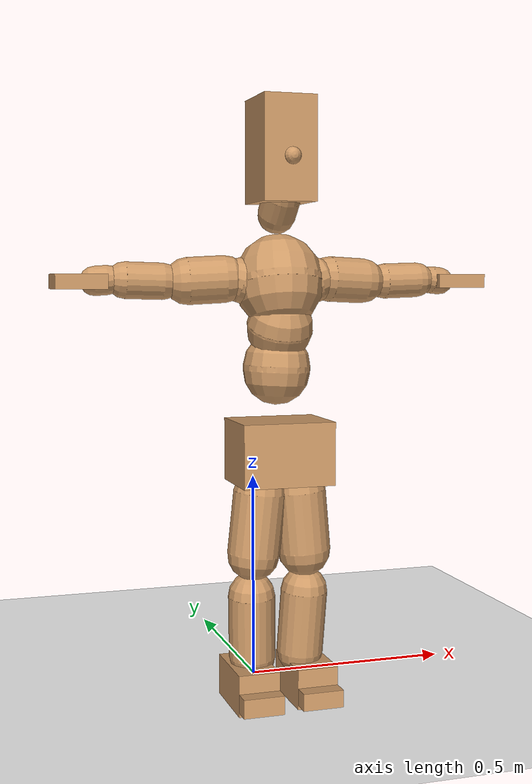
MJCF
<mujoco model="humanoid">
  <option integrator="implicitfast" />

  <visual>
    <global offwidth="1280" offheight="960" />
    <headlight active="1" ambient="0.34 0.34 0.34" diffuse="0.5 0.5 0.5" />
  </visual>

  <default>
    <joint damping="2" stiffness="2" armature="0.01" limited="true" solimplimit="0 .99 .01" />
    <geom condim="1" friction="0.7 0.005 0.0001" solimp=".99 .99 .003" solref="0.015 1" margin="0.001" rgba="0.8 0.6 .4 1" />
    <default class="smplcontact">
      <geom condim="3" friction="1. 0.005 0.0001" solref="0.015 1" solimp="0.98 0.98 0.001" priority="1" />
    </default>
    <default class="stiff_medium">
      <joint stiffness="10" />
    </default>
    <default class="stiff_medium_higher">
      <joint stiffness="50" />
    </default>
    <default class="stiff_high">
      <joint stiffness="100" />
    </default>
  </default>

  <asset>
    <texture type="skybox" builtin="gradient" rgb1="0.99 0.99 0.99" rgb2="0.608 0.828 0.892" width="100" />
    <texture builtin="flat" height="1278" mark="cross" markrgb="1 1 1" name="texgeom" random="0.01" rgb1="0.8 0.6 0.4" rgb2="0.8 0.6 0.4" type="cube" width="127" />
    <texture name="texplane" type="2d" builtin="checker" markrgb="1 1 1" rgb1="0.756 0.772 0.76" rgb2="0.6 0.6 0.6" width="100" height="100" />
    <material name="MatPlane" reflectance="0.5" texture="texplane" texrepeat="1 1" texuniform="true" />
    <material name="geom" texture="texgeom" texuniform="true" />
  </asset>

  <worldbody>
    <light name="tracking_light" pos="0 0 7" dir="0 0 -1" directional="true" cutoff="100" exponent="1" diffuse="1 1 1" specular="0.1 0.1 0.1" mode="trackcom" />
    <camera name="back" pos="0 3 2.4" xyaxes="-1 0 0 0 -1 2" mode="trackcom" />
    <camera name="side" pos="-3 0 2.4" xyaxes="0 -1 0 1 0 2" mode="trackcom" />
    <camera name="front_side" pos="-2.8 -2.8 0.8" xyaxes="0.5 -0.5 0 0.1 0.1 1" mode="trackcom" />
    <geom condim="3" name="floor" pos="0 0 0" rgba="1 1 1 1" size="100 100 .2" type="plane" material="MatPlane" />
    <body name="Pelvis" pos="-0.0018 -0.2233 0.603363" euler="90 0 0">
      <site name="Pelvis" size="0.01" />
      <freejoint name="Pelvis" />
      <geom type="box" pos="-0.0000 -0.0121 -0.0055" size="0.1069 0.0722 0.083" quat="1.0000 0.0000 0.0000 0.0000" density="3165.830099" name="Pelvis" />
      <body name="L_Hip" pos="0.0434375 -0.057125 -0.00425">
        <joint name="L_Hip_x" type="hinge" pos="0 0 0" axis="1 0 0" stiffness="4.682612346938775" range="-160.0 22.92" class="stiff_medium" damping="5.761376063259233" armature="0.003150516248715214"/>
        <joint name="L_Hip_y" type="hinge" pos="0 0 0" axis="0 1 0" stiffness="4.729285204081632" range="-70.0 70.0" class="stiff_medium" damping="5.227190951440425" armature="0.0057775169108513404"/>
        <joint name="L_Hip_z" type="hinge" pos="0 0 0" axis="0 0 1" stiffness="4.725288673469388" range="-28.65 90.0" class="stiff_medium" damping="3.8557989532863886" armature="0.003146302077085307"/>
        <geom type="capsule" density="2040.816327" fromto="0.0043125 -0.046875 -0.0005625 0.017125 -0.187625 -0.00225" size="0.0615" name="L_Hip" />
        <body name="L_Knee" pos="0.0214375 -0.2345 -0.0028125">
          <joint name="L_Knee_x" type="hinge" pos="0 0 0" axis="1 0 0" range="-5.16 171.89" damping="3.314776765383125" armature="0.00346820550097493" stiffness="0.9900423469387756"/>
          <joint name="L_Knee_y" type="hinge" pos="0 0 0" axis="0 1 0" range="-4.58 6.88" damping="4.406653617352899" armature="0.006327520325715423" stiffness="0.9590346565349543"/>
          <joint name="L_Knee_z" type="hinge" pos="0 0 0" axis="0 0 1" range="-6.88 4.58" damping="3.327252622723649" armature="0.00344560635338567" stiffness="1.0040513265306124"/>
          <geom type="capsule" density="1234.567901" fromto="-0.0016875 -0.04975 -0.0054375 -0.0068125 -0.199 -0.021875" size="0.0541" name="L_Knee" />
          <body name="L_Ankle" pos="-0.0085 -0.24875 -0.0273125">
            <joint name="L_Ankle_x" type="hinge" pos="0 0 0" axis="1 0 0" range="-45.84 45.84" class="stiff_medium" damping="3.6717736084900707" armature="0.0059919650808907534" stiffness="6.25"/>
            <joint name="L_Ankle_y" type="hinge" pos="0 0 0" axis="0 1 0" range="-74.48 22.92" class="stiff_medium" damping="1.858589102984691" armature="0.006141072806637225" stiffness="6.25"/>
            <joint name="L_Ankle_z" type="hinge" pos="0 0 0" axis="0 0 1" range="-4.58 4.58" class="stiff_medium" damping="4.001717943795505" armature="0.007117220667419966" stiffness="6.25"/>
            <geom type="box" pos="0.0145625 -0.0149375 0.015125" size="0.0483 0.0464 0.085" quat="1.0000 0.0000 0.0000 0.0000" density="449.071558" name="L_Ankle" class="smplcontact" />
            <body name="L_Toe" pos="0.0165 -0.034875 0.0745625">
              <joint name="L_Toe_x" type="hinge" pos="0 0 0" axis="1 0 0" range="-91.67 22.92" armature="0.007683229914737339" damping="1.385931989198725" stiffness="1.25"/>
              <joint name="L_Toe_y" type="hinge" pos="0 0 0" axis="0 1 0" range="-4.58 4.58" armature="0.008367648440754674" damping="1.446344395428927" stiffness="1.25"/>
              <joint name="L_Toe_z" type="hinge" pos="0 0 0" axis="0 0 1" range="-4.58 4.58" armature="0.009751505861704667" damping="1.561370060372033" stiffness="1.25"/>
              <geom type="box" pos="-0.001875 0.0034375 0.0155" size="0.0478 0.02 0.0496" quat="1.0000 0.0000 0.0000 0.0000" density="423.206892" name="L_Toe" class="smplcontact" />
            </body>
          </body>
        </body>
      </body>
      <body name="R_Hip" pos="-0.0423125 -0.0565625 -0.0026875">
        <joint name="R_Hip_x" type="hinge" pos="0 0 0" axis="1 0 0" stiffness="4.682612346938775" range="-160.0 22.92" class="stiff_medium" damping="5.761376063259233" armature="0.003150516248715214"/>
        <joint name="R_Hip_y" type="hinge" pos="0 0 0" axis="0 1 0" stiffness="4.729285204081632" range="-70.0 70.0" class="stiff_medium" damping="5.227190951440425" armature="0.0057775169108513404"/>
        <joint name="R_Hip_z" type="hinge" pos="0 0 0" axis="0 0 1" stiffness="4.725288673469388" range="-90.0 28.65" class="stiff_medium" damping="3.8557989532863886" armature="0.003146302077085307"/>
        <geom type="capsule" density="2040.816327" fromto="-0.0048125 -0.0478125 -0.001125 -0.019125 -0.191312 -0.0044375" size="0.0606" name="R_Hip" />
        <body name="R_Knee" pos="-0.0239375 -0.239125 -0.0055625">
          <joint name="R_Knee_x" type="hinge" pos="0 0 0" axis="1 0 0" range="-5.16 171.89" damping="3.314776765383125" armature="0.00346820550097493" stiffness="0.9900423469387756"/>
          <joint name="R_Knee_y" type="hinge" pos="0 0 0" axis="0 1 0" range="-6.88 4.58" damping="4.406653617352899" armature="0.006327520325715423" stiffness="0.9590346565349543"/>
          <joint name="R_Knee_z" type="hinge" pos="0 0 0" axis="0 0 1" range="-4.58 6.88" damping="3.327252622723649" armature="0.00344560635338567" stiffness="1.0040513265306124"/>
          <geom type="capsule" density="1234.567901" fromto="0.002 -0.0498125 -0.0053125 0.007875 -0.199187 -0.021125" size="0.0541" name="R_Knee" />
          <body name="R_Ankle" pos="0.009875 -0.249 -0.0264375">
            <joint name="R_Ankle_x" type="hinge" pos="0 0 0" axis="1 0 0" range="-45.84 45.84" class="stiff_medium" damping="3.6717736084900707" armature="0.0059919650808907534" stiffness="6.25"/>
            <joint name="R_Ankle_y" type="hinge" pos="0 0 0" axis="0 1 0" range="-22.92 74.48" class="stiff_medium" damping="1.858589102984691" armature="0.006141072806637225" stiffness="6.25"/>
            <joint name="R_Ankle_z" type="hinge" pos="0 0 0" axis="0 0 1" range="-4.58 4.58" class="stiff_medium" damping="4.001717943795505" armature="0.007117220667419966" stiffness="6.25"/>
            <geom type="box" pos="-0.01325 -0.010875 0.016" size="0.0483 0.0478 0.0865" quat="1.0000 0.0000 0.0000 0.0000" density="434.700981" name="R_Ankle" class="smplcontact" />
            <body name="R_Toe" pos="-0.015875 -0.0300625 0.0770625">
              <joint name="R_Toe_x" type="hinge" pos="0 0 0" axis="1 0 0" range="-91.67 22.92" armature="0.007683229914737339" damping="1.385931989198725" stiffness="1.25"/>
              <joint name="R_Toe_y" type="hinge" pos="0 0 0" axis="0 1 0" range="-4.58 4.58" armature="0.008367648440754674" damping="1.446344395428927" stiffness="1.25"/>
              <joint name="R_Toe_z" type="hinge" pos="0 0 0" axis="0 0 1" range="-4.58 4.58" armature="0.009751505861704667" damping="1.561370060372033" stiffness="1.25"/>
              <geom type="box" pos="0.002625 0.0028125 0.0141875" size="0.0479 0.0216 0.0493" quat="1.0000 0.0000 0.0000 0.0000" density="407.384095" name="R_Toe" class="smplcontact" />
            </body>
          </body>
        </body>
      </body>
      <body name="Torso" pos="-0.0025 0.109 -0.0267">
        <joint name="Torso_x" type="hinge" pos="0 0 0" axis="1 0 0" range="-25.78 57.3" class="stiff_medium" damping="12.833128643120643" armature="0.008389867755726707" stiffness="8.724237142857143"/>
        <joint name="Torso_y" type="hinge" pos="0 0 0" axis="0 1 0" range="-57.3 57.3" class="stiff_high" damping="9.641007877053584" armature="0.002615251180296176" stiffness="88.85287346938776"/>
        <joint name="Torso_z" type="hinge" pos="0 0 0" axis="0 0 1" range="-34.38 34.38" class="stiff_high" damping="15.256621848072815" armature="0.006404603814601965" stiffness="90.85827826086955"/>
        <geom type="capsule" density="2040.816327" fromto="0.0025 0.0608 0.0005 0.003 0.0743 0.0006" size="0.0769" name="Torso" />
        <body name="Spine" pos="0.0055 0.1352 0.0011">
          <joint name="Spine_x" type="hinge" pos="0 0 0" axis="1 0 0" stiffness="8.524132708333333" range="-25.78 57.3" class="stiff_medium" damping="12.593328186154578" armature="0.008268911088118523"/>
          <joint name="Spine_y" type="hinge" pos="0 0 0" axis="0 1 0" stiffness="8.372724772727274" range="-57.3 57.3" class="stiff_high" damping="3.7058359647278705" armature="0.002562864197858745"/>
          <joint name="Spine_z" type="hinge" pos="0 0 0" axis="0 0 1" stiffness="17.091765581395343" range="-34.38 34.38" class="stiff_high" damping="7.912330782724081" armature="0.005087324565503505"/>
          <geom type="capsule" density="2040.816327" fromto="0.0007 0.0238 0.0114 0.0008 0.0291 0.014" size="0.0755" name="Spine" />
          <body name="Chest" pos="0.0015 0.0529 0.0254">
            <joint name="Chest_x" type="hinge" pos="0 0 0" axis="1 0 0" stiffness="8.200278372093024" range="-25.78 57.3" class="stiff_medium" damping="12.319816615498857" armature="0.008226164178146724"/>
            <joint name="Chest_y" type="hinge" pos="0 0 0" axis="0 1 0" stiffness="6.66116392857143" range="-57.3 57.3" class="stiff_high" damping="3.2862373670032503" armature="0.0025331899922285133"/>
            <joint name="Chest_z" type="hinge" pos="0 0 0" axis="0 0 1" stiffness="16.64932651162791" range="-34.38 34.38" class="stiff_high" damping="7.360514262532789" armature="0.004519466278837099"/>
            <geom type="capsule" density="2040.816327" fromto="-0.0009 0.0682 -0.0173 -0.001 0.0833 -0.0212" size="0.1002" name="Chest" />
            <body name="Neck" pos="-0.0028 0.2139 -0.0429">
              <joint name="Neck_x" type="hinge" pos="0 0 0" axis="1 0 0" range="-28.65 57.3" class="stiff_medium_higher" damping="10.0" armature="0.01" stiffness="50.0"/>
              <joint name="Neck_y" type="hinge" pos="0 0 0" axis="0 1 0" range="-40.11 40.11" class="stiff_medium_higher" damping="10.0" armature="0.01" stiffness="50.0"/>
              <joint name="Neck_z" type="hinge" pos="0 0 0" axis="0 0 1" range="-40.11 40.11" class="stiff_medium_higher" damping="9.999999999999991" armature="0.009999999999999983" stiffness="50.0"/>
              <geom type="capsule" density="1000" fromto="0.001 0.013 0.0103 0.0041 0.052 0.0411" size="0.0436" name="Neck" />
              <body name="Head" pos="0.0052 0.065 0.0513">
                <joint name="Head_x" type="hinge" pos="0 0 0" axis="1 0 0" range="-28.65 57.3" class="stiff_medium_higher" damping="2.0000000000000013" armature="0.010000000000000014" stiffness="50.0"/>
                <joint name="Head_y" type="hinge" pos="0 0 0" axis="0 1 0" range="-40.11 40.11" class="stiff_medium_higher" damping="2.0" armature="0.01" stiffness="50.0"/>
                <joint name="Head_z" type="hinge" pos="0 0 0" axis="0 0 1" range="-40.11 40.11" class="stiff_medium_higher" damping="1.9999999999999993" armature="0.009999999999999993" stiffness="50.0"/>
                <geom type="box" pos="-0.0042 0.0876 -0.0116" size="0.0606 0.1154 0.076" quat="1.0000 0.0000 0.0000 0.0000" density="1018.069894" name="Head" />
                <geom type="capsule" name="nose" size="0.02 0.01" pos="0 0.07 0.05" quat="1 0 0 0" mass="0" contype="0" conaffinity="0" />
              </body>
            </body>
            <body name="L_Thorax" pos="0.04334 0.066935 -0.018755">
              <joint name="L_Thorax_x" type="hinge" pos="0 0 0" axis="1 0 0" range="-10.89 4.58" class="stiff_medium_higher" damping="8.434703621562795" armature="0.004456108006307129" stiffness="19.956940306122444"/>
              <joint name="L_Thorax_y" type="hinge" pos="0 0 0" axis="0 1 0" range="-28.65 17.19" class="stiff_medium_higher" damping="6.022763730189365" armature="0.002308462047497596" stiffness="19.641693367346935"/>
              <joint name="L_Thorax_z" type="hinge" pos="0 0 0" axis="0 0 1" range="-31.51 40.11" class="stiff_medium_higher" damping="6.0206596523268665" armature="0.00230644025454951" stiffness="19.64517755102041"/>
              <geom type="capsule" density="1000" fromto="0.01001 0.003355 -0.00099 0.04004 0.01342 -0.003905" size="0.0521" name="L_Thorax" />
              <body name="L_Shoulder" pos="0.05005 0.016775 -0.004895">
                <joint name="L_Shoulder_x" type="hinge" pos="0 0 0" axis="1 0 0" range="-97.4 97.4" class="stiff_medium" damping="2.7507326192703623" armature="0.005207580254125646" stiffness="4.036066215805471"/>
                <joint name="L_Shoulder_y" type="hinge" pos="0 0 0" axis="0 1 0" range="-108.86 80.21" class="stiff_medium" damping="1.8298767221096353" armature="0.0023536822566645405" stiffness="3.9517852040816326"/>
                <joint name="L_Shoulder_z" type="hinge" pos="0 0 0" axis="0 0 1" range="-97.4 85.94" class="stiff_medium" damping="1.8299095357342465" armature="0.0023507489222583905" stiffness="3.9568582653061224"/>
                <geom type="capsule" density="1000" fromto="0.028545 -0.00143 -0.003025 0.114235 -0.00561 -0.0121" size="0.0517" name="L_Shoulder" />
                <body name="L_Elbow" pos="0.14278 -0.00704 -0.015125">
                  <joint name="L_Elbow_x" type="hinge" pos="0 0 0" axis="1 0 0" range="-17.19 4.58" damping="2.63838098611619" armature="0.0066028902176267406" stiffness="0.8433948163265306"/>
                  <joint name="L_Elbow_y" type="hinge" pos="0 0 0" axis="0 1 0" range="-180.0 17.19" damping="1.649331180076202" armature="0.002582836246104814" stiffness="0.842575551020408"/>
                  <joint name="L_Elbow_z" type="hinge" pos="0 0 0" axis="0 0 1" range="-100.84 4.58" damping="1.6457692537144095" armature="0.0025674453810837074" stiffness="0.8439693265306122"/>
                  <geom type="capsule" density="1000" fromto="0.02739 0.00099 -0.00011 0.10967 0.00396 -0.000495" size="0.0405" name="L_Elbow" />
                  <body name="L_Wrist" pos="0.13706 0.00495 -0.00066">
                    <joint name="L_Wrist_x" type="hinge" pos="0 0 0" axis="1 0 0" range="-180.0 22.92" armature="0.007461834395238876" damping="1.2279494204587482" stiffness="1.0103814285714288"/>
                    <joint name="L_Wrist_y" type="hinge" pos="0 0 0" axis="0 1 0" range="-17.19 17.19" armature="0.0036649156166127473" damping="0.8549575346764099" stiffness="0.9972294897959184"/>
                    <joint name="L_Wrist_z" type="hinge" pos="0 0 0" axis="0 0 1" range="-22.92 22.92" armature="0.003441422269276138" damping="0.8306797080467413" stiffness="1.002534306122449"/>
                    <geom type="capsule" density="1000" fromto="0.00924 -0.00088 -0.00165 0.03696 -0.003575 -0.0066" size="0.0318" name="L_Wrist" class="smplcontact" />
                    <body name="L_Hand" pos="0.0462 -0.00451 -0.008195">
                      <joint name="L_Hand_x" type="hinge" pos="0 0 0" axis="1 0 0" range="-17.19 17.19" armature="0.009696126030368893" damping="1.460529947204492" stiffness="1.0999999999999999"/>
                      <joint name="L_Hand_y" type="hinge" pos="0 0 0" axis="0 1 0" range="-51.57 51.57" armature="0.006325063576496717" damping="1.179624510947987" stiffness="1.0999999999999999"/>
                      <joint name="L_Hand_z" type="hinge" pos="0 0 0" axis="0 0 1" range="-91.67 91.67" armature="0.0054264608203165275" damping="1.0926213344382563" stiffness="1.0999999999999999"/>
                      <geom type="box" pos="0.027115 0.00055 -0.00319" size="0.0585 0.0158 0.0538" quat="1.0000 0.0000 0.0000 0.0000" density="400.552564" name="L_Hand" class="smplcontact" />
                    </body>
                  </body>
                </body>
              </body>
            </body>
            <body name="R_Thorax" pos="-0.04499 0.06534 -0.02123">
              <joint name="R_Thorax_x" type="hinge" pos="0 0 0" axis="1 0 0" range="-10.89 4.58" class="stiff_medium_higher" damping="8.434703621562795" armature="0.004456108006307129" stiffness="19.956940306122444"/>
              <joint name="R_Thorax_y" type="hinge" pos="0 0 0" axis="0 1 0" range="-17.19 28.65" class="stiff_medium_higher" damping="6.022763730189365" armature="0.002308462047497596" stiffness="19.641693367346935"/>
              <joint name="R_Thorax_z" type="hinge" pos="0 0 0" axis="0 0 1" range="-40.11 31.51" class="stiff_medium_higher" damping="6.0206596523268665" armature="0.00230644025454951" stiffness="19.64517755102041"/>
              <geom type="capsule" density="1000" fromto="-0.01056 0.003575 -0.00099 -0.04224 0.0143 -0.004015" size="0.0511" name="R_Thorax" />
              <body name="R_Shoulder" pos="-0.0528 0.01793 -0.005005">
                <joint name="R_Shoulder_x" type="hinge" pos="0 0 0" axis="1 0 0" range="-97.4 97.4" class="stiff_medium" damping="2.7507326192703623" armature="0.005207580254125646" stiffness="4.036066215805471"/>
                <joint name="R_Shoulder_y" type="hinge" pos="0 0 0" axis="0 1 0" range="-80.21 108.86" class="stiff_medium" damping="1.8298767221096353" armature="0.0023536822566645405" stiffness="3.9517852040816326"/>
                <joint name="R_Shoulder_z" type="hinge" pos="0 0 0" axis="0 0 1" range="-85.94 97.4" class="stiff_medium" damping="1.8299095357342465" armature="0.0023507489222583905" stiffness="3.9568582653061224"/>
                <geom type="capsule" density="1000" fromto="-0.027885 -0.001485 -0.002365 -0.11165 -0.005885 -0.009405" size="0.0531" name="R_Shoulder" />
                <body name="R_Elbow" pos="-0.139535 -0.007315 -0.01177">
                  <joint name="R_Elbow_x" type="hinge" pos="0 0 0" axis="1 0 0" range="-17.19 4.58" damping="2.63838098611619" armature="0.0066028902176267406" stiffness="0.8433948163265306"/>
                  <joint name="R_Elbow_y" type="hinge" pos="0 0 0" axis="0 1 0" range="-17.19 180.0" damping="1.649331180076202" armature="0.002582836246104814" stiffness="0.842575551020408"/>
                  <joint name="R_Elbow_z" type="hinge" pos="0 0 0" axis="0 0 1" range="-4.58 100.84" damping="1.6457692537144095" armature="0.0025674453810837074" stiffness="0.8439693265306122"/>
                  <geom type="capsule" density="1000" fromto="-0.028105 0.00088 -0.000605 -0.11231 0.00341 -0.00242" size="0.0408" name="R_Elbow" />
                  <body name="R_Wrist" pos="-0.140415 0.00429 -0.00308">
                    <joint name="R_Wrist_x" type="hinge" pos="0 0 0" axis="1 0 0" range="-180.0 22.92" armature="0.007461834395238876" damping="1.2279494204587482" stiffness="1.0103814285714288"/>
                    <joint name="R_Wrist_y" type="hinge" pos="0 0 0" axis="0 1 0" range="-17.19 17.19" armature="0.0036649156166127473" damping="0.8549575346764099" stiffness="0.9972294897959184"/>
                    <joint name="R_Wrist_z" type="hinge" pos="0 0 0" axis="0 0 1" range="-22.92 22.92" armature="0.003441422269276138" damping="0.8306797080467413" stiffness="1.002534306122449"/>
                    <geom type="capsule" density="1000" fromto="-0.009295 -0.00066 -0.001155 -0.037235 -0.002695 -0.004565" size="0.0326" name="R_Wrist" class="smplcontact" />
                    <body name="R_Hand" pos="-0.04653 -0.003355 -0.005665">
                      <joint name="R_Hand_x" type="hinge" pos="0 0 0" axis="1 0 0" range="-17.19 17.19" armature="0.009696126030368893" damping="1.460529947204492" stiffness="1.0999999999999999"/>
                      <joint name="R_Hand_y" type="hinge" pos="0 0 0" axis="0 1 0" range="-51.57 51.57" armature="0.006325063576496717" damping="1.179624510947987" stiffness="1.0999999999999999"/>
                      <joint name="R_Hand_z" type="hinge" pos="0 0 0" axis="0 0 1" range="-91.67 91.67" armature="0.0054264608203165275" damping="1.0926213344382563" stiffness="1.0999999999999999"/>
                      <geom type="box" pos="-0.02541 -0.000495 -0.004345" size="0.0569 0.0164 0.0546" quat="1.0000 0.0000 0.0000 0.0000" density="403.679611" name="R_Hand" class="smplcontact" />
                    </body>
                  </body>
                </body>
              </body>
            </body>
          </body>
        </body>
      </body>
    </body>
  </worldbody>
  <actuator>
    <general name="L_Hip_x" joint="L_Hip_x" biastype="affine" gainprm="134.5455305788832" biasprm="-100.82823820114426 -84.28702224489795 -0.7681834751012311" ctrllimited="true" ctrlrange="-1 1" forcerange="-168.5740444897959 168.5740444897959" />
    <general name="L_Hip_y" joint="L_Hip_y" biastype="affine" gainprm="104.00241357711633" biasprm="0.0 -85.12713367346939 -1.0454381902880852" ctrllimited="true" ctrlrange="-1 1" forcerange="-170.25426734693878 170.25426734693878" />
    <general name="L_Hip_z" joint="L_Hip_z" biastype="affine" gainprm="88.0675601736452" biasprm="45.53682947031718 -85.05519612244898 -0.7711597906572777" ctrllimited="true" ctrlrange="-1 1" forcerange="-170.11039224489795 170.11039224489795" />
    <general name="L_Knee_x" joint="L_Knee_x" biastype="affine" gainprm="137.6700859239888" biasprm="129.64548673316378 -89.1038112244898 -0.8286941913457813" ctrllimited="true" ctrlrange="-1 1" forcerange="-178.2076224489796 178.2076224489796" />
    <general name="L_Knee_y" joint="L_Knee_y" biastype="affine" gainprm="8.63194770327106" biasprm="1.7324153331172283 -86.3131190881459 -1.1016634043382247" ctrllimited="true" ctrlrange="-1 1" forcerange="-172.6262381762918 172.6262381762918" />
    <general name="L_Knee_z" joint="L_Knee_z" biastype="affine" gainprm="9.03712757714746" biasprm="-1.8137341559720035 -90.36461938775511 -0.8318131556809123" ctrllimited="true" ctrlrange="-1 1" forcerange="-180.72923877551023 180.72923877551023" />
    <general name="L_Ankle_x" joint="L_Ankle_x" biastype="affine" gainprm="45.003314762673796" biasprm="0.0 -56.25 -1.2239245361633568" ctrllimited="true" ctrlrange="-1 1" forcerange="-112.5 112.5" />
    <general name="L_Ankle_y" joint="L_Ankle_y" biastype="affine" gainprm="47.811113196819676" biasprm="-25.309455815482774 -56.25 -1.239059401989794" ctrllimited="true" ctrlrange="-1 1" forcerange="-112.5 112.5" />
    <general name="L_Ankle_z" joint="L_Ankle_z" biastype="affine" gainprm="4.496404485450391" biasprm="0.0 -56.25 -1.3339059812651684" ctrllimited="true" ctrlrange="-1 1" forcerange="-112.5 112.5" />
    <general name="L_Toe_x" joint="L_Toe_x" biastype="affine" gainprm="44.999387771856796" biasprm="-26.998061866787282 -45.0 -0.55437279567949" ctrllimited="true" ctrlrange="-1 1" forcerange="-90.0 90.0" />
    <general name="L_Toe_y" joint="L_Toe_y" biastype="affine" gainprm="3.597123588360313" biasprm="0.0 -45.0 -0.5785377581715708" ctrllimited="true" ctrlrange="-1 1" forcerange="-90.0 90.0" />
    <general name="L_Toe_z" joint="L_Toe_z" biastype="affine" gainprm="3.597123588360313" biasprm="0.0 -45.0 -0.6245480241488133" ctrllimited="true" ctrlrange="-1 1" forcerange="-90.0 90.0" />
    <general name="R_Hip_x" joint="R_Hip_x" biastype="affine" gainprm="134.5455305788832" biasprm="-100.82823820114426 -84.28702224489795 -0.7681834751012311" ctrllimited="true" ctrlrange="-1 1" forcerange="-168.5740444897959 168.5740444897959" />
    <general name="R_Hip_y" joint="R_Hip_y" biastype="affine" gainprm="104.00241357711633" biasprm="0.0 -85.12713367346939 -1.0454381902880852" ctrllimited="true" ctrlrange="-1 1" forcerange="-170.25426734693878 170.25426734693878" />
    <general name="R_Hip_z" joint="R_Hip_z" biastype="affine" gainprm="88.0675601736452" biasprm="-45.53682947031718 -85.05519612244898 -0.7711597906572777" ctrllimited="true" ctrlrange="-1 1" forcerange="-170.11039224489795 170.11039224489795" />
    <general name="R_Knee_x" joint="R_Knee_x" biastype="affine" gainprm="137.6700859239888" biasprm="129.64548673316378 -89.1038112244898 -0.8286941913457813" ctrllimited="true" ctrlrange="-1 1" forcerange="-178.2076224489796 178.2076224489796" />
    <general name="R_Knee_y" joint="R_Knee_y" biastype="affine" gainprm="8.63194770327106" biasprm="-1.7324153331172283 -86.3131190881459 -1.1016634043382247" ctrllimited="true" ctrlrange="-1 1" forcerange="-172.6262381762918 172.6262381762918" />
    <general name="R_Knee_z" joint="R_Knee_z" biastype="affine" gainprm="9.03712757714746" biasprm="1.8137341559720035 -90.36461938775511 -0.8318131556809123" ctrllimited="true" ctrlrange="-1 1" forcerange="-180.72923877551023 180.72923877551023" />
    <general name="R_Ankle_x" joint="R_Ankle_x" biastype="affine" gainprm="45.003314762673796" biasprm="0.0 -56.25 -1.2239245361633568" ctrllimited="true" ctrlrange="-1 1" forcerange="-112.5 112.5" />
    <general name="R_Ankle_y" joint="R_Ankle_y" biastype="affine" gainprm="47.811113196819676" biasprm="25.309455815482774 -56.25 -1.239059401989794" ctrllimited="true" ctrlrange="-1 1" forcerange="-112.5 112.5" />
    <general name="R_Ankle_z" joint="R_Ankle_z" biastype="affine" gainprm="4.496404485450391" biasprm="0.0 -56.25 -1.3339059812651684" ctrllimited="true" ctrlrange="-1 1" forcerange="-112.5 112.5" />
    <general name="R_Toe_x" joint="R_Toe_x" biastype="affine" gainprm="44.999387771856796" biasprm="-26.998061866787282 -45.0 -0.55437279567949" ctrllimited="true" ctrlrange="-1 1" forcerange="-90.0 90.0" />
    <general name="R_Toe_y" joint="R_Toe_y" biastype="affine" gainprm="3.597123588360313" biasprm="0.0 -45.0 -0.5785377581715708" ctrllimited="true" ctrlrange="-1 1" forcerange="-90.0 90.0" />
    <general name="R_Toe_z" joint="R_Toe_z" biastype="affine" gainprm="3.597123588360313" biasprm="0.0 -45.0 -0.6245480241488133" ctrllimited="true" ctrlrange="-1 1" forcerange="-90.0 90.0" />
    <general name="Torso_x" joint="Torso_x" biastype="affine" gainprm="151.80377221252243" biasprm="57.593342563056154 -209.38169142857143 -3.422167638165505" ctrllimited="true" ctrlrange="-1 1" forcerange="-314.07253714285713 314.07253714285713" />
    <general name="Torso_y" joint="Torso_y" biastype="affine" gainprm="213.26260438991383" biasprm="0.0 -213.24689632653062 -1.9282015754107167" ctrllimited="true" ctrlrange="-1 1" forcerange="-319.8703444897959 319.8703444897959" />
    <general name="Torso_z" joint="Torso_z" biastype="affine" gainprm="130.84555825179245" biasprm="0.0 -218.05986782608693 -3.051324369614563" ctrllimited="true" ctrlrange="-1 1" forcerange="-327.0898017391304 327.0898017391304" />
    <general name="Spine_x" joint="Spine_x" biastype="affine" gainprm="148.32190812518058" biasprm="56.272346462514335 -204.579185 -3.3582208496412207" ctrllimited="true" ctrlrange="-1 1" forcerange="-306.86877749999996 306.86877749999996" />
    <general name="Spine_y" joint="Spine_y" biastype="affine" gainprm="200.96019646308363" biasprm="0.0 -200.94539454545458 -1.8529179823639352" ctrllimited="true" ctrlrange="-1 1" forcerange="-301.41809181818184 301.41809181818184" />
    <general name="Spine_z" joint="Spine_z" biastype="affine" gainprm="123.06977700949903" biasprm="0.0 -205.10118697674412 -2.6374435942413603" ctrllimited="true" ctrlrange="-1 1" forcerange="-307.6517804651162 307.6517804651162" />
    <general name="Chest_x" joint="Chest_x" biastype="affine" gainprm="142.68676672729774" biasprm="54.13441125715483 -196.80668093023257 -3.285284430799695" ctrllimited="true" ctrlrange="-1 1" forcerange="-295.21002139534886 295.21002139534886" />
    <general name="Chest_y" joint="Chest_y" biastype="affine" gainprm="159.87971038041" biasprm="0.0 -159.8679342857143 -1.6431186835016252" ctrllimited="true" ctrlrange="-1 1" forcerange="-239.80190142857145 239.80190142857145" />
    <general name="Chest_z" joint="Chest_z" biastype="affine" gainprm="119.88398105429127" biasprm="0.0 -199.7919181395349 -2.453504754177596" ctrllimited="true" ctrlrange="-1 1" forcerange="-299.68787720930237 299.68787720930237" />
    <general name="Neck_x" joint="Neck_x" biastype="affine" gainprm="27.00198885760427" biasprm="9.000662952534757 -36.0 -0.8" ctrllimited="true" ctrlrange="-1 1" forcerange="-72.0 72.0" />
    <general name="Neck_y" joint="Neck_y" biastype="affine" gainprm="25.20185626709732" biasprm="0.0 -36.0 -0.8" ctrllimited="true" ctrlrange="-1 1" forcerange="-72.0 72.0" />
    <general name="Neck_z" joint="Neck_z" biastype="affine" gainprm="25.20185626709732" biasprm="0.0 -36.0 -0.7999999999999994" ctrllimited="true" ctrlrange="-1 1" forcerange="-72.0 72.0" />
    <general name="Head_x" joint="Head_x" biastype="affine" gainprm="18.001325905069514" biasprm="6.000441968356505 -24.0 -0.8000000000000006" ctrllimited="true" ctrlrange="-1 1" forcerange="-48.0 48.0" />
    <general name="Head_y" joint="Head_y" biastype="affine" gainprm="16.801237511398213" biasprm="0.0 -24.0 -0.8" ctrllimited="true" ctrlrange="-1 1" forcerange="-48.0 48.0" />
    <general name="Head_z" joint="Head_z" biastype="affine" gainprm="16.801237511398213" biasprm="0.0 -24.0 -0.7999999999999998" ctrllimited="true" ctrlrange="-1 1" forcerange="-48.0 48.0" />
    <general name="L_Thorax_x" joint="L_Thorax_x" biastype="affine" gainprm="6.466106980153143" biasprm="-2.6374360080650514 -47.89665673469387 -0.6747762897250236" ctrllimited="true" ctrlrange="-1 1" forcerange="-95.79331346938774 95.79331346938774" />
    <general name="L_Thorax_y" joint="L_Thorax_y" biastype="affine" gainprm="18.857414593762904" biasprm="-4.714353648440726 -47.140064081632644 -0.48182109841514925" ctrllimited="true" ctrlrange="-1 1" forcerange="-94.28012816326529 94.28012816326529" />
    <general name="L_Thorax_z" joint="L_Thorax_z" biastype="affine" gainprm="29.46787972505706" biasprm="3.538449673771163 -47.14842612244898 -0.4816527721861493" ctrllimited="true" ctrlrange="-1 1" forcerange="-94.29685224489796 94.29685224489796" />
    <general name="L_Shoulder_x" joint="L_Shoulder_x" biastype="affine" gainprm="32.93334506047744" biasprm="0.0 -19.373117835866264 -0.7335286984720967" ctrllimited="true" ctrlrange="-1 1" forcerange="-38.74623567173253 38.74623567173253" />
    <general name="L_Shoulder_y" joint="L_Shoulder_y" biastype="affine" gainprm="31.297133640991394" biasprm="-4.74249155770034 -18.968568979591836 -0.4879671258959028" ctrllimited="true" ctrlrange="-1 1" forcerange="-37.93713795918367 37.93713795918367" />
    <general name="L_Shoulder_z" joint="L_Shoulder_z" biastype="affine" gainprm="30.387595059587213" biasprm="-1.8994318718384982 -18.992919673469387 -0.4879758761957991" ctrllimited="true" ctrlrange="-1 1" forcerange="-37.985839346938775 37.985839346938775" />
    <general name="L_Elbow_x" joint="L_Elbow_x" biastype="affine" gainprm="5.768185641845626" biasprm="-3.3411493313584466 -30.3622133877551 -0.4221409577785904" ctrllimited="true" ctrlrange="-1 1" forcerange="-60.7244267755102 60.7244267755102" />
    <general name="L_Elbow_y" joint="L_Elbow_y" biastype="affine" gainprm="52.19676802931011" biasprm="-43.09628177317298 -30.33271983673469 -0.2638929888121923" ctrllimited="true" ctrlrange="-1 1" forcerange="-60.66543967346938 60.66543967346938" />
    <general name="L_Elbow_z" joint="L_Elbow_z" biastype="affine" gainprm="27.951141407994328" biasprm="-25.522451830141666 -30.382895755102037 -0.26332308059430554" ctrllimited="true" ctrlrange="-1 1" forcerange="-60.765791510204075 60.765791510204075" />
    <general name="L_Wrist_x" joint="L_Wrist_x" biastype="affine" gainprm="10.735167645580283" biasprm="-8.310073594361082 -6.062288571428573 -0.4911797681834993" ctrllimited="true" ctrlrange="-1 1" forcerange="-12.124577142857145 12.124577142857145" />
    <general name="L_Wrist_y" joint="L_Wrist_y" biastype="affine" gainprm="1.7951453047962525" biasprm="0.0 -5.9833769387755105 -0.34198301387056396" ctrllimited="true" ctrlrange="-1 1" forcerange="-11.966753877551021 11.966753877551021" />
    <general name="L_Wrist_z" joint="L_Wrist_z" biastype="affine" gainprm="2.4062595700697247" biasprm="0.0 -6.015205836734694 -0.33227188321869655" ctrllimited="true" ctrlrange="-1 1" forcerange="-12.030411673469388 12.030411673469388" />
    <general name="L_Hand_x" joint="L_Hand_x" biastype="affine" gainprm="1.9801458495576467" biasprm="0.0 -6.6 -0.5842119788817968" ctrllimited="true" ctrlrange="-1 1" forcerange="-13.2 13.2" />
    <general name="L_Hand_y" joint="L_Hand_y" biastype="affine" gainprm="5.940437548672939" biasprm="0.0 -6.6 -0.4718498043791948" ctrllimited="true" ctrlrange="-1 1" forcerange="-13.2 13.2" />
    <general name="L_Hand_z" joint="L_Hand_z" biastype="affine" gainprm="10.55962594700113" biasprm="0.0 -6.6 -0.4370485337753025" ctrllimited="true" ctrlrange="-1 1" forcerange="-13.2 13.2" />
    <general name="R_Thorax_x" joint="R_Thorax_x" biastype="affine" gainprm="6.466106980153143" biasprm="-2.6374360080650514 -47.89665673469387 -0.6747762897250236" ctrllimited="true" ctrlrange="-1 1" forcerange="-95.79331346938774 95.79331346938774" />
    <general name="R_Thorax_y" joint="R_Thorax_y" biastype="affine" gainprm="18.857414593762904" biasprm="4.714353648440723 -47.140064081632644 -0.48182109841514925" ctrllimited="true" ctrlrange="-1 1" forcerange="-94.28012816326529 94.28012816326529" />
    <general name="R_Thorax_z" joint="R_Thorax_z" biastype="affine" gainprm="29.46787972505706" biasprm="-3.538449673771163 -47.14842612244898 -0.4816527721861493" ctrllimited="true" ctrlrange="-1 1" forcerange="-94.29685224489796 94.29685224489796" />
    <general name="R_Shoulder_x" joint="R_Shoulder_x" biastype="affine" gainprm="32.93334506047744" biasprm="0.0 -19.373117835866264 -0.7335286984720967" ctrllimited="true" ctrlrange="-1 1" forcerange="-38.74623567173253 38.74623567173253" />
    <general name="R_Shoulder_y" joint="R_Shoulder_y" biastype="affine" gainprm="31.297133640991394" biasprm="4.74249155770034 -18.968568979591836 -0.4879671258959028" ctrllimited="true" ctrlrange="-1 1" forcerange="-37.93713795918367 37.93713795918367" />
    <general name="R_Shoulder_z" joint="R_Shoulder_z" biastype="affine" gainprm="30.387595059587213" biasprm="1.899431871838494 -18.992919673469387 -0.4879758761957991" ctrllimited="true" ctrlrange="-1 1" forcerange="-37.985839346938775 37.985839346938775" />
    <general name="R_Elbow_x" joint="R_Elbow_x" biastype="affine" gainprm="5.768185641845626" biasprm="-3.3411493313584466 -30.3622133877551 -0.4221409577785904" ctrllimited="true" ctrlrange="-1 1" forcerange="-60.7244267755102 60.7244267755102" />
    <general name="R_Elbow_y" joint="R_Elbow_y" biastype="affine" gainprm="52.19676802931011" biasprm="43.09628177317298 -30.33271983673469 -0.2638929888121923" ctrllimited="true" ctrlrange="-1 1" forcerange="-60.66543967346938 60.66543967346938" />
    <general name="R_Elbow_z" joint="R_Elbow_z" biastype="affine" gainprm="27.951141407994328" biasprm="25.522451830141662 -30.382895755102037 -0.26332308059430554" ctrllimited="true" ctrlrange="-1 1" forcerange="-60.765791510204075 60.765791510204075" />
    <general name="R_Wrist_x" joint="R_Wrist_x" biastype="affine" gainprm="10.735167645580283" biasprm="-8.310073594361082 -6.062288571428573 -0.4911797681834993" ctrllimited="true" ctrlrange="-1 1" forcerange="-12.124577142857145 12.124577142857145" />
    <general name="R_Wrist_y" joint="R_Wrist_y" biastype="affine" gainprm="1.7951453047962525" biasprm="0.0 -5.9833769387755105 -0.34198301387056396" ctrllimited="true" ctrlrange="-1 1" forcerange="-11.966753877551021 11.966753877551021" />
    <general name="R_Wrist_z" joint="R_Wrist_z" biastype="affine" gainprm="2.4062595700697247" biasprm="0.0 -6.015205836734694 -0.33227188321869655" ctrllimited="true" ctrlrange="-1 1" forcerange="-12.030411673469388 12.030411673469388" />
    <general name="R_Hand_x" joint="R_Hand_x" biastype="affine" gainprm="1.9801458495576467" biasprm="0.0 -6.6 -0.5842119788817968" ctrllimited="true" ctrlrange="-1 1" forcerange="-13.2 13.2" />
    <general name="R_Hand_y" joint="R_Hand_y" biastype="affine" gainprm="5.940437548672939" biasprm="0.0 -6.6 -0.4718498043791948" ctrllimited="true" ctrlrange="-1 1" forcerange="-13.2 13.2" />
    <general name="R_Hand_z" joint="R_Hand_z" biastype="affine" gainprm="10.55962594700113" biasprm="0.0 -6.6 -0.4370485337753025" ctrllimited="true" ctrlrange="-1 1" forcerange="-13.2 13.2" />
  </actuator>
  <contact>
    <exclude body1="Torso" body2="Chest" />
    <exclude body1="Head" body2="Chest" />
    <exclude body1="R_Knee" body2="R_Toe" />
    <exclude body1="R_Knee" body2="L_Ankle" />
    <exclude body1="R_Knee" body2="L_Toe" />
    <exclude body1="L_Knee" body2="L_Toe" />
    <exclude body1="L_Knee" body2="R_Ankle" />
    <exclude body1="L_Knee" body2="R_Toe" />
    <exclude body1="L_Shoulder" body2="Chest" />
    <exclude body1="R_Shoulder" body2="Chest" />
  </contact>
  <sensor>
    <framelinvel name="sensor_Pelvis_framelinvel" objtype="xbody" objname="Pelvis" />
    <framelinvel name="sensor_L_Hip_framelinvel" objtype="xbody" objname="L_Hip" />
    <framelinvel name="sensor_L_Knee_framelinvel" objtype="xbody" objname="L_Knee" />
    <framelinvel name="sensor_L_Ankle_framelinvel" objtype="xbody" objname="L_Ankle" />
    <framelinvel name="sensor_L_Toe_framelinvel" objtype="xbody" objname="L_Toe" />
    <framelinvel name="sensor_R_Hip_framelinvel" objtype="xbody" objname="R_Hip" />
    <framelinvel name="sensor_R_Knee_framelinvel" objtype="xbody" objname="R_Knee" />
    <framelinvel name="sensor_R_Ankle_framelinvel" objtype="xbody" objname="R_Ankle" />
    <framelinvel name="sensor_R_Toe_framelinvel" objtype="xbody" objname="R_Toe" />
    <framelinvel name="sensor_Torso_framelinvel" objtype="xbody" objname="Torso" />
    <framelinvel name="sensor_Spine_framelinvel" objtype="xbody" objname="Spine" />
    <framelinvel name="sensor_Chest_framelinvel" objtype="xbody" objname="Chest" />
    <framelinvel name="sensor_Neck_framelinvel" objtype="xbody" objname="Neck" />
    <framelinvel name="sensor_Head_framelinvel" objtype="xbody" objname="Head" />
    <framelinvel name="sensor_L_Thorax_framelinvel" objtype="xbody" objname="L_Thorax" />
    <framelinvel name="sensor_L_Shoulder_framelinvel" objtype="xbody" objname="L_Shoulder" />
    <framelinvel name="sensor_L_Elbow_framelinvel" objtype="xbody" objname="L_Elbow" />
    <framelinvel name="sensor_L_Wrist_framelinvel" objtype="xbody" objname="L_Wrist" />
    <framelinvel name="sensor_L_Hand_framelinvel" objtype="xbody" objname="L_Hand" />
    <framelinvel name="sensor_R_Thorax_framelinvel" objtype="xbody" objname="R_Thorax" />
    <framelinvel name="sensor_R_Shoulder_framelinvel" objtype="xbody" objname="R_Shoulder" />
    <framelinvel name="sensor_R_Elbow_framelinvel" objtype="xbody" objname="R_Elbow" />
    <framelinvel name="sensor_R_Wrist_framelinvel" objtype="xbody" objname="R_Wrist" />
    <framelinvel name="sensor_R_Hand_framelinvel" objtype="xbody" objname="R_Hand" />
    <frameangvel name="sensor_Pelvis_frameangvel" objtype="xbody" objname="Pelvis" />
    <frameangvel name="sensor_L_Hip_frameangvel" objtype="xbody" objname="L_Hip" />
    <frameangvel name="sensor_L_Knee_frameangvel" objtype="xbody" objname="L_Knee" />
    <frameangvel name="sensor_L_Ankle_frameangvel" objtype="xbody" objname="L_Ankle" />
    <frameangvel name="sensor_L_Toe_frameangvel" objtype="xbody" objname="L_Toe" />
    <frameangvel name="sensor_R_Hip_frameangvel" objtype="xbody" objname="R_Hip" />
    <frameangvel name="sensor_R_Knee_frameangvel" objtype="xbody" objname="R_Knee" />
    <frameangvel name="sensor_R_Ankle_frameangvel" objtype="xbody" objname="R_Ankle" />
    <frameangvel name="sensor_R_Toe_frameangvel" objtype="xbody" objname="R_Toe" />
    <frameangvel name="sensor_Torso_frameangvel" objtype="xbody" objname="Torso" />
    <frameangvel name="sensor_Spine_frameangvel" objtype="xbody" objname="Spine" />
    <frameangvel name="sensor_Chest_frameangvel" objtype="xbody" objname="Chest" />
    <frameangvel name="sensor_Neck_frameangvel" objtype="xbody" objname="Neck" />
    <frameangvel name="sensor_Head_frameangvel" objtype="xbody" objname="Head" />
    <frameangvel name="sensor_L_Thorax_frameangvel" objtype="xbody" objname="L_Thorax" />
    <frameangvel name="sensor_L_Shoulder_frameangvel" objtype="xbody" objname="L_Shoulder" />
    <frameangvel name="sensor_L_Elbow_frameangvel" objtype="xbody" objname="L_Elbow" />
    <frameangvel name="sensor_L_Wrist_frameangvel" objtype="xbody" objname="L_Wrist" />
    <frameangvel name="sensor_L_Hand_frameangvel" objtype="xbody" objname="L_Hand" />
    <frameangvel name="sensor_R_Thorax_frameangvel" objtype="xbody" objname="R_Thorax" />
    <frameangvel name="sensor_R_Shoulder_frameangvel" objtype="xbody" objname="R_Shoulder" />
    <frameangvel name="sensor_R_Elbow_frameangvel" objtype="xbody" objname="R_Elbow" />
    <frameangvel name="sensor_R_Wrist_frameangvel" objtype="xbody" objname="R_Wrist" />
    <frameangvel name="sensor_R_Hand_frameangvel" objtype="xbody" objname="R_Hand" />
    <subtreelinvel name="Chest_subtreelinvel" body="Chest" />
    <gyro name="Pelvis_gyro" site="Pelvis" />
  </sensor>
</mujoco>
